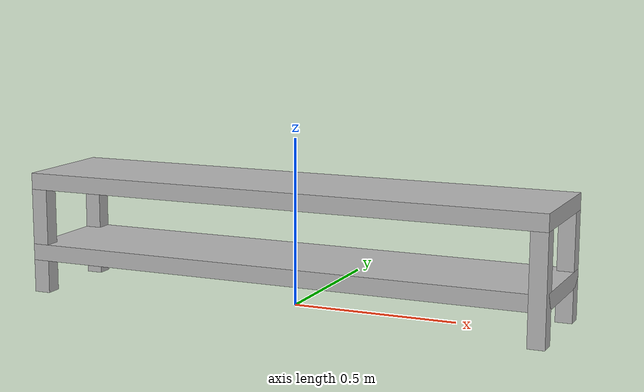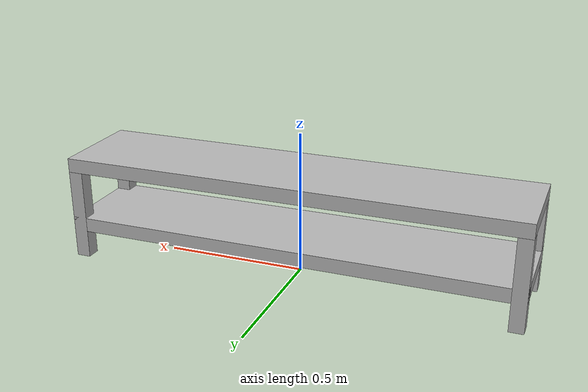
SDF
<?xml version="1.0" ?>
<sdf version="1.6">
  <model name="rwc2022/black_cabinet2">
    <static>true</static>
    <link name="1_link">
      <collision name="1_col">
        <geometry>
          <box>
            <size>1.605 0.35 0.05</size>
          </box>
        </geometry>
      </collision>
      <visual name="1_vis">
        <geometry>
          <box>
            <size>1.605 0.35 0.05</size>
          </box>
        </geometry>
      </visual>
      <pose>0.0 0.0 0.345 0 0 0</pose>
    </link>
    <link name="2_link">
      <collision name="2_col">
        <geometry>
          <box>
            <size>0.05 0.05 0.32</size>
          </box>
        </geometry>
      </collision>
      <visual name="2_vis">
        <geometry>
          <box>
            <size>0.05 0.05 0.32</size>
          </box>
        </geometry>
      </visual>
      <pose>-0.7775 -0.15 0.16 0 0 0</pose>
    </link>
    <link name="3_link">
      <collision name="3_col">
        <geometry>
          <box>
            <size>0.05 0.05 0.32</size>
          </box>
        </geometry>
      </collision>
      <visual name="3_vis">
        <geometry>
          <box>
            <size>0.05 0.05 0.32</size>
          </box>
        </geometry>
      </visual>
      <pose>0.7775 -0.15 0.16 0 0 0</pose>
    </link>
    <link name="4_link">
      <collision name="4_col">
        <geometry>
          <box>
            <size>0.05 0.05 0.32</size>
          </box>
        </geometry>
      </collision>
      <visual name="4_vis">
        <geometry>
          <box>
            <size>0.05 0.05 0.32</size>
          </box>
        </geometry>
      </visual>
      <pose>-0.7775 0.15 0.16 0 0 0</pose>
    </link>
    <link name="5_link">
      <collision name="5_col">
        <geometry>
          <box>
            <size>0.05 0.05 0.32</size>
          </box>
        </geometry>
      </collision>
      <visual name="5_vis">
        <geometry>
          <box>
            <size>0.05 0.05 0.32</size>
          </box>
        </geometry>
      </visual>
      <pose>0.7775 0.15 0.16 0 0 0</pose>
    </link>
    <link name="6_link">
      <collision name="6_col">
        <geometry>
          <box>
            <size>1.605 0.35 0.05</size>
          </box>
        </geometry>
      </collision>
      <visual name="6_vis">
        <geometry>
          <box>
            <size>1.605 0.35 0.05</size>
          </box>
        </geometry>
      </visual>
      <pose>0.0 0.0 0.125 0 0 0</pose>
    </link>
    <link name="on_top_of">
      <virtual_volume name="on_top_of_vv">
        <geometry>
          <box>
            <size>1.585 0.29 0.25</size>
          </box>
        </geometry>
        <pose>0.0 0.0 0.515 0 0 0</pose>
      </virtual_volume>
    </link>
    <link name="in_front_of">
      <virtual_volume name="in_front_of_vv">
        <geometry>
          <box>
            <size>0.2 0.15 0.01</size>
          </box>
        </geometry>
        <pose>0.5 -0.7 0.005 0 0 0</pose>
      </virtual_volume>
    </link>
  </model>
</sdf>
